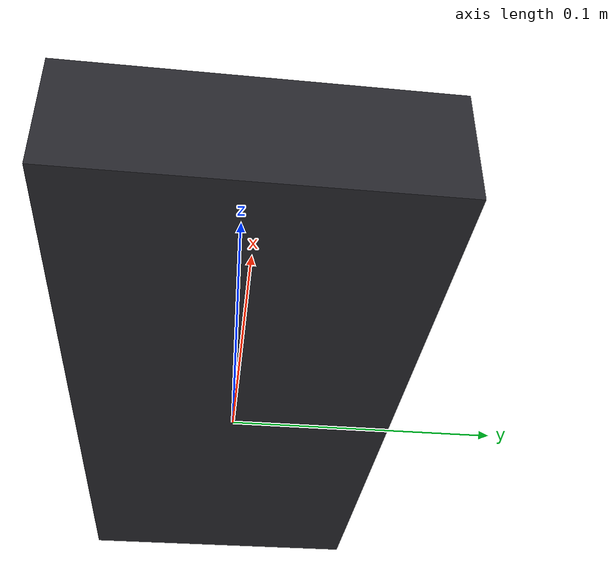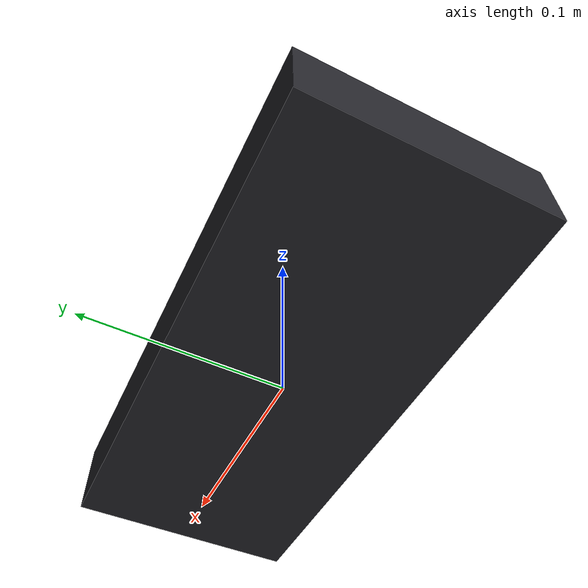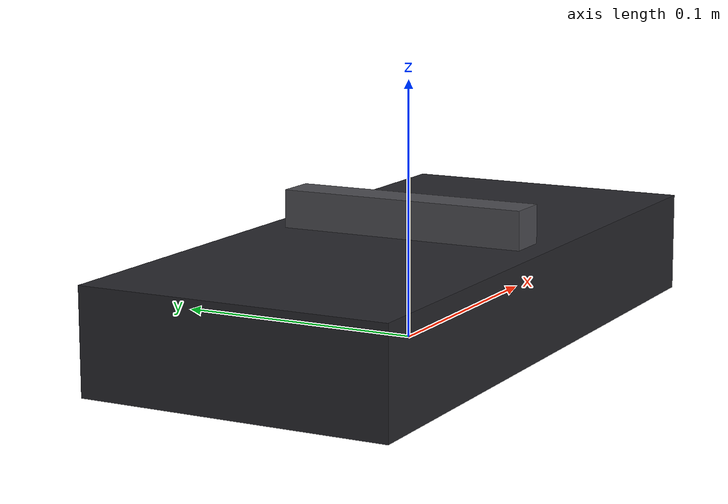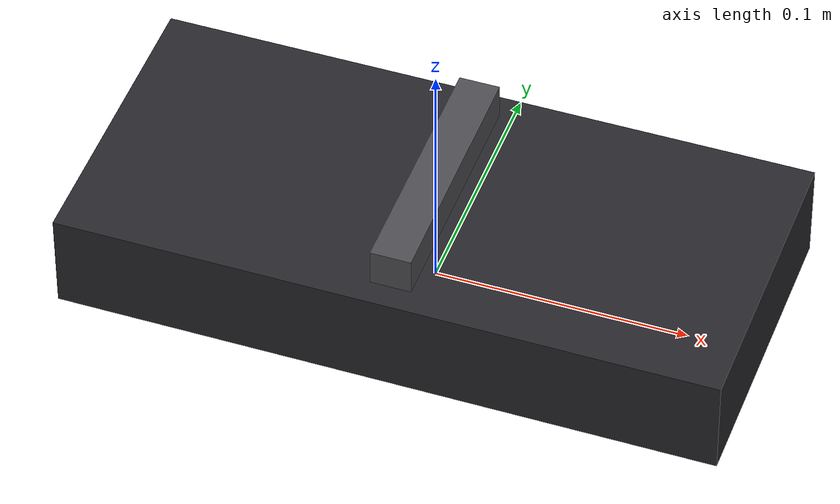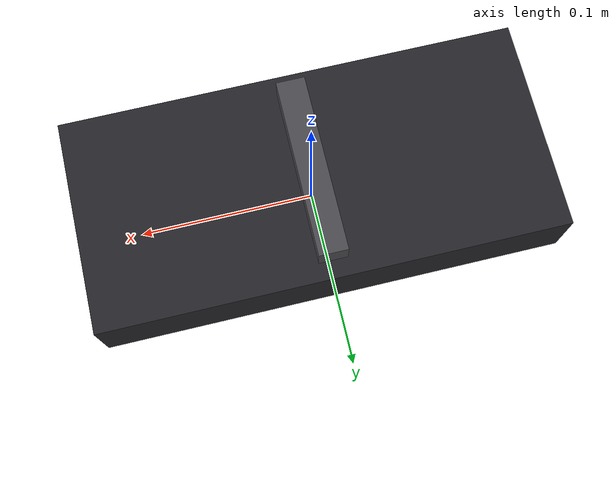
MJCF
<?xml version="1.0" encoding="utf-8"?>
<mujoco model="langmuir_blodgett_trough">
  <compiler angle="radian" autolimits="true"/>
  <default>
    <default class="body"><geom contype="1" conaffinity="1"/></default>
  </default>
  <worldbody>
    <body name="base">
      <geom type="box" size="0.13 0.06 0.02" pos="0 0 0.02" rgba="0.15 0.15 0.17 1" class="body"/>
      <body name="barrier" pos="0 0 0.045">
        <joint name="barrier_joint" type="slide" axis="0 1 0" range="-0.05 0.05" damping="1.0" frictionloss="0.3"/>
  <geom type="box" size="0.008 0.05 0.01" pos="0 0 0" rgba="0.3 0.3 0.32 1" class="body"/>
      </body>
    </body>
  </worldbody>
</mujoco>
